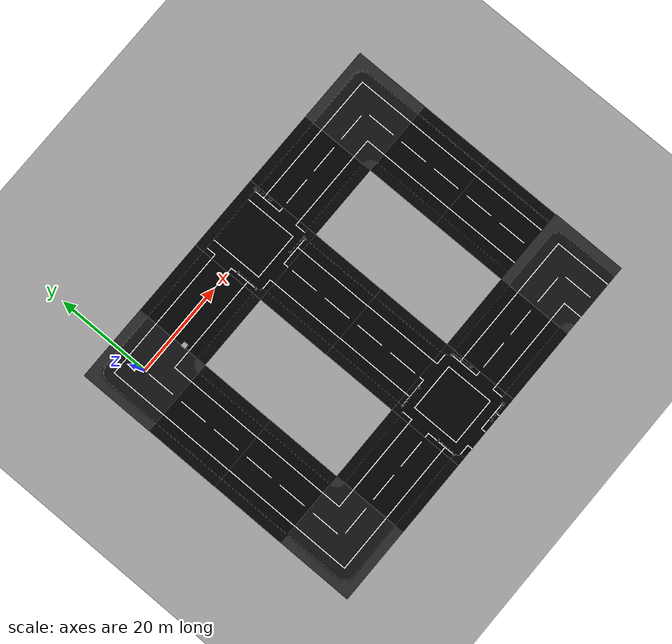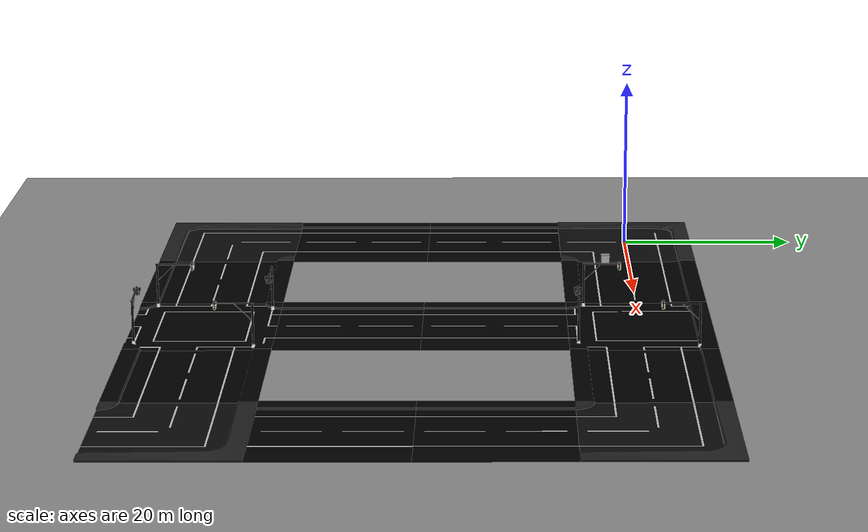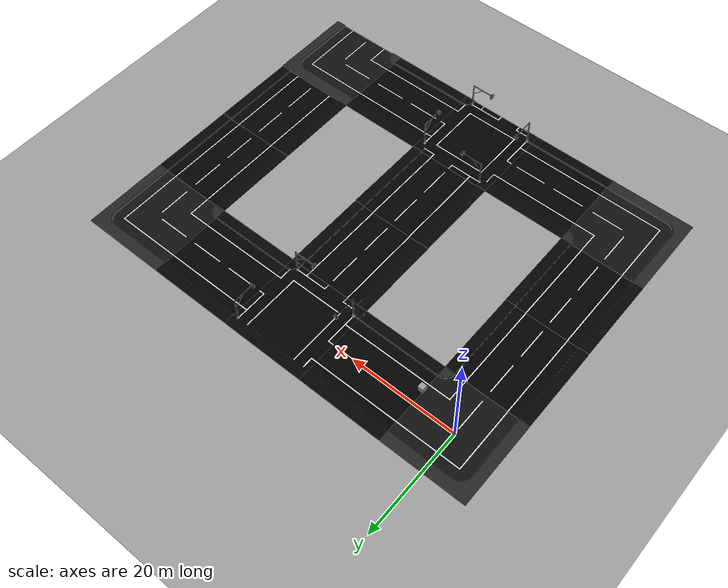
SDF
<sdf version="1.6">
 <world name="default">
  <light name="sun" type="directional">
   <pose>0 0 10 0 -0 0</pose>
   <diffuse>0.8 0.8 0.8 1</diffuse>
   <specular>0.1 0.1 0.1 1</specular>
   <attenuation>
    <range>1000</range>
    <constant>0.9</constant>
    <linear>0.01</linear>
    <quadratic>0.001</quadratic>
   </attenuation>
   <direction>-0.5 0.5 -1</direction>
  </light>
  <gravity>0 0 -9.8</gravity>
  <magnetic_field>6e-06 2.3e-05 -4.2e-05</magnetic_field>
  <atmosphere type="adiabatic"/>
  <physics name="default_physics" default="0" type="ode">
   <max_step_size>0.001</max_step_size>
   <real_time_factor>1</real_time_factor>
   <real_time_update_rate>1000</real_time_update_rate>
  </physics>
  <scene><ambient>0.4 0.4 0.4 1</ambient><background>0.7 0.7 0.7 1</background><shadows>1</shadows></scene>
  <spherical_coordinates>
   <surface_model>EARTH_WGS84</surface_model>
   <latitude_deg>0</latitude_deg>
   <longitude_deg>0</longitude_deg>
   <elevation>0</elevation>
   <heading_deg>0</heading_deg>
  </spherical_coordinates>
  <model name="road_corner_1_0">
   <link name="road_corner_1_link">
    <inertial>
     <mass>1</mass>
     <inertia><ixx>1</ixx><ixy>0</ixy><ixz>0</ixz><iyy>1</iyy><iyz>0</iyz><izz>1</izz></inertia>
    </inertial>
    <visual name="road_corner_1_visual">
     <geometry>
      <mesh>
       <uri>/home/amirmohammad/ros_avisengine_ws/src/autonomous_vehicle/avisengine_environment/meshes/mesh_road_corner.dae</uri>
       <scale>1 1 1</scale>
      </mesh>
     </geometry>
     <material><shader type="vertex"><normal_map>__default__</normal_map></shader></material>
    </visual>
    <collision name="road_corner_1_collision">
     <geometry>
      <mesh>
       <uri>/home/amirmohammad/ros_avisengine_ws/src/autonomous_vehicle/avisengine_environment/meshes/mesh_road_corner.dae</uri>
       <scale>1 1 1</scale>
      </mesh>
     </geometry>
     <surface>
      <friction>
       <ode><mu>1</mu><mu2>1</mu2><fdir1>0 0 0</fdir1><slip1>0</slip1><slip2>0</slip2></ode>
       <torsional>
        <coefficient>1</coefficient>
        <patch_radius>0</patch_radius>
        <surface_radius>0</surface_radius>
        <use_patch_radius>1</use_patch_radius>
        <ode><slip>0</slip></ode>
       </torsional>
      </friction>
      <bounce><restitution_coefficient>0</restitution_coefficient><threshold>1e+06</threshold></bounce>
      <contact>
       <collide_without_contact>0</collide_without_contact>
       <collide_without_contact_bitmask>1</collide_without_contact_bitmask>
       <collide_bitmask>1</collide_bitmask>
       <ode>
        <soft_cfm>0</soft_cfm>
        <soft_erp>0.2</soft_erp>
        <kp>1e+13</kp>
        <kd>1</kd>
        <max_vel>0.01</max_vel>
        <min_depth>0</min_depth>
       </ode>
       <bullet>
        <split_impulse>1</split_impulse>
        <split_impulse_penetration_threshold>-0.01</split_impulse_penetration_threshold>
        <soft_cfm>0</soft_cfm>
        <soft_erp>0.2</soft_erp>
        <kp>1e+13</kp>
        <kd>1</kd>
       </bullet>
      </contact>
     </surface>
    </collision>
   </link>
   <static>1</static>
  </model>
  <model name="unit_box_0_0">
   <pose>8.3825 -2.76854 0.499996 0 -9e-06 -7.9e-05</pose>
   <link name="link">
    <inertial>
     <mass>1</mass>
     <inertia>
      <ixx>0.166667</ixx>
      <ixy>0</ixy>
      <ixz>0</ixz>
      <iyy>0.166667</iyy>
      <iyz>0</iyz>
      <izz>0.166667</izz>
     </inertia>
    </inertial>
    <collision name="collision"><geometry><box><size>1 1 1</size></box></geometry></collision>
    <visual name="visual">
     <geometry><box><size>1 1 1</size></box></geometry>
     <material>
      <script><name>Gazebo/Grey</name><uri>file://media/materials/scripts/gazebo.material</uri></script>
     </material>
    </visual>
   </link>
  </model>
  <model name="road_straight_1">
   <link name="road_corner_1_link">
    <inertial>
     <inertia><ixx>1</ixx><ixy>0</ixy><ixz>0</ixz><iyy>1</iyy><iyz>0</iyz><izz>1</izz></inertia>
     <mass>1</mass>
    </inertial>
    <visual name="road_corner_1_visual">
     <geometry>
      <mesh>
       <uri>/home/amirmohammad/ros_avisengine_ws/src/autonomous_vehicle/avisengine_environment/meshes/mesh_road_straight.dae</uri>
       <scale>1 1 1</scale>
      </mesh>
     </geometry>
     <material><shader type="vertex"><normal_map>__default__</normal_map></shader></material>
    </visual>
    <collision name="road_corner_1_collision">
     <geometry>
      <mesh>
       <uri>/home/amirmohammad/ros_avisengine_ws/src/autonomous_vehicle/avisengine_environment/meshes/mesh_road_straight.dae</uri>
       <scale>1 1 1</scale>
      </mesh>
     </geometry>
     <surface>
      <friction>
       <ode><mu>1</mu><mu2>1</mu2><fdir1>0 0 0</fdir1><slip1>0</slip1><slip2>0</slip2></ode>
       <torsional>
        <coefficient>1</coefficient>
        <patch_radius>0</patch_radius>
        <surface_radius>0</surface_radius>
        <use_patch_radius>1</use_patch_radius>
        <ode><slip>0</slip></ode>
       </torsional>
      </friction>
      <bounce><restitution_coefficient>0</restitution_coefficient><threshold>1e+06</threshold></bounce>
      <contact>
       <collide_without_contact>0</collide_without_contact>
       <collide_without_contact_bitmask>1</collide_without_contact_bitmask>
       <collide_bitmask>1</collide_bitmask>
       <ode>
        <soft_cfm>0</soft_cfm>
        <soft_erp>0.2</soft_erp>
        <kp>1e+13</kp>
        <kd>1</kd>
        <max_vel>0.01</max_vel>
        <min_depth>0</min_depth>
       </ode>
       <bullet>
        <split_impulse>1</split_impulse>
        <split_impulse_penetration_threshold>-0.01</split_impulse_penetration_threshold>
        <soft_cfm>0</soft_cfm>
        <soft_erp>0.2</soft_erp>
        <kp>1e+13</kp>
        <kd>1</kd>
       </bullet>
      </contact>
     </surface>
    </collision>
   </link>
   <static>1</static>
   <pose>16 0 0 0 -0 0</pose>
  </model>
  <model name="road_TIntersection_1_0">
   <link name="road_corner_1_link">
    <inertial>
     <inertia><ixx>1</ixx><ixy>0</ixy><ixz>0</ixz><iyy>1</iyy><iyz>0</iyz><izz>1</izz></inertia>
     <mass>1</mass>
    </inertial>
    <visual name="road_corner_1_visual">
     <geometry>
      <mesh>
       <uri>/home/amirmohammad/ros_avisengine_ws/src/autonomous_vehicle/avisengine_environment/meshes/mesh_road_Tintersection.dae</uri>
       <scale>1 1 1</scale>
      </mesh>
     </geometry>
     <material><shader type="vertex"><normal_map>__default__</normal_map></shader></material>
    </visual>
    <collision name="road_corner_1_collision">
     <geometry>
      <mesh>
       <uri>/home/amirmohammad/ros_avisengine_ws/src/autonomous_vehicle/avisengine_environment/meshes/mesh_road_Tintersection.dae</uri>
       <scale>1 1 1</scale>
      </mesh>
     </geometry>
     <surface>
      <friction>
       <ode><mu>1</mu><mu2>1</mu2><fdir1>0 0 0</fdir1><slip1>0</slip1><slip2>0</slip2></ode>
       <torsional>
        <coefficient>1</coefficient>
        <patch_radius>0</patch_radius>
        <surface_radius>0</surface_radius>
        <use_patch_radius>1</use_patch_radius>
        <ode><slip>0</slip></ode>
       </torsional>
      </friction>
      <bounce><restitution_coefficient>0</restitution_coefficient><threshold>1e+06</threshold></bounce>
      <contact>
       <collide_without_contact>0</collide_without_contact>
       <collide_without_contact_bitmask>1</collide_without_contact_bitmask>
       <collide_bitmask>1</collide_bitmask>
       <ode>
        <soft_cfm>0</soft_cfm>
        <soft_erp>0.2</soft_erp>
        <kp>1e+13</kp>
        <kd>1</kd>
        <max_vel>0.01</max_vel>
        <min_depth>0</min_depth>
       </ode>
       <bullet>
        <split_impulse>1</split_impulse>
        <split_impulse_penetration_threshold>-0.01</split_impulse_penetration_threshold>
        <soft_cfm>0</soft_cfm>
        <soft_erp>0.2</soft_erp>
        <kp>1e+13</kp>
        <kd>1</kd>
       </bullet>
      </contact>
     </surface>
    </collision>
   </link>
   <static>1</static>
   <pose>32 0 0 0 -0 0</pose>
  </model>
  <model name="road_straight_1_0">
   <link name="road_corner_1_link">
    <inertial>
     <inertia><ixx>1</ixx><ixy>0</ixy><ixz>0</ixz><iyy>1</iyy><iyz>0</iyz><izz>1</izz></inertia>
     <mass>1</mass>
    </inertial>
    <visual name="road_corner_1_visual">
     <geometry>
      <mesh>
       <uri>/home/amirmohammad/ros_avisengine_ws/src/autonomous_vehicle/avisengine_environment/meshes/mesh_road_straight.dae</uri>
       <scale>1 1 1</scale>
      </mesh>
     </geometry>
     <material><shader type="vertex"><normal_map>__default__</normal_map></shader></material>
    </visual>
    <collision name="road_corner_1_collision">
     <geometry>
      <mesh>
       <uri>/home/amirmohammad/ros_avisengine_ws/src/autonomous_vehicle/avisengine_environment/meshes/mesh_road_straight.dae</uri>
       <scale>1 1 1</scale>
      </mesh>
     </geometry>
     <surface>
      <friction>
       <ode><mu>1</mu><mu2>1</mu2><fdir1>0 0 0</fdir1><slip1>0</slip1><slip2>0</slip2></ode>
       <torsional>
        <coefficient>1</coefficient>
        <patch_radius>0</patch_radius>
        <surface_radius>0</surface_radius>
        <use_patch_radius>1</use_patch_radius>
        <ode><slip>0</slip></ode>
       </torsional>
      </friction>
      <bounce><restitution_coefficient>0</restitution_coefficient><threshold>1e+06</threshold></bounce>
      <contact>
       <collide_without_contact>0</collide_without_contact>
       <collide_without_contact_bitmask>1</collide_without_contact_bitmask>
       <collide_bitmask>1</collide_bitmask>
       <ode>
        <soft_cfm>0</soft_cfm>
        <soft_erp>0.2</soft_erp>
        <kp>1e+13</kp>
        <kd>1</kd>
        <max_vel>0.01</max_vel>
        <min_depth>0</min_depth>
       </ode>
       <bullet>
        <split_impulse>1</split_impulse>
        <split_impulse_penetration_threshold>-0.01</split_impulse_penetration_threshold>
        <soft_cfm>0</soft_cfm>
        <soft_erp>0.2</soft_erp>
        <kp>1e+13</kp>
        <kd>1</kd>
       </bullet>
      </contact>
     </surface>
    </collision>
   </link>
   <static>1</static>
   <pose>48 0 0 0 -0 0</pose>
  </model>
  <model name="road_corner_1_0_0">
   <link name="road_corner_1_0::road_corner_1_link">
    <inertial>
     <inertia><ixx>1</ixx><ixy>0</ixy><ixz>0</ixz><iyy>1</iyy><iyz>0</iyz><izz>1</izz></inertia>
     <mass>1</mass>
    </inertial>
    <visual name="road_corner_1_visual">
     <geometry>
      <mesh>
       <uri>/home/amirmohammad/ros_avisengine_ws/src/autonomous_vehicle/avisengine_environment/meshes/mesh_road_corner.dae</uri>
       <scale>1 1 1</scale>
      </mesh>
     </geometry>
     <material><shader type="vertex"><normal_map>__default__</normal_map></shader></material>
    </visual>
    <collision name="road_corner_1_collision">
     <geometry>
      <mesh>
       <uri>/home/amirmohammad/ros_avisengine_ws/src/autonomous_vehicle/avisengine_environment/meshes/mesh_road_corner.dae</uri>
       <scale>1 1 1</scale>
      </mesh>
     </geometry>
     <surface>
      <friction>
       <ode><mu>1</mu><mu2>1</mu2><fdir1>0 0 0</fdir1><slip1>0</slip1><slip2>0</slip2></ode>
       <torsional>
        <coefficient>1</coefficient>
        <patch_radius>0</patch_radius>
        <surface_radius>0</surface_radius>
        <use_patch_radius>1</use_patch_radius>
        <ode><slip>0</slip></ode>
       </torsional>
      </friction>
      <bounce><restitution_coefficient>0</restitution_coefficient><threshold>1e+06</threshold></bounce>
      <contact>
       <collide_without_contact>0</collide_without_contact>
       <collide_without_contact_bitmask>1</collide_without_contact_bitmask>
       <collide_bitmask>1</collide_bitmask>
       <ode>
        <soft_cfm>0</soft_cfm>
        <soft_erp>0.2</soft_erp>
        <kp>1e+13</kp>
        <kd>1</kd>
        <max_vel>0.01</max_vel>
        <min_depth>0</min_depth>
       </ode>
       <bullet>
        <split_impulse>1</split_impulse>
        <split_impulse_penetration_threshold>-0.01</split_impulse_penetration_threshold>
        <soft_cfm>0</soft_cfm>
        <soft_erp>0.2</soft_erp>
        <kp>1e+13</kp>
        <kd>1</kd>
       </bullet>
      </contact>
     </surface>
    </collision>
   </link>
   <static>1</static>
   <pose>64 -0.024108 0 0 0 -1.57319</pose>
  </model>
  <model name="road_straight_1_1">
   <link name="road_corner_1_link">
    <inertial>
     <inertia><ixx>1</ixx><ixy>0</ixy><ixz>0</ixz><iyy>1</iyy><iyz>0</iyz><izz>1</izz></inertia>
     <mass>1</mass>
    </inertial>
    <visual name="road_corner_1_visual">
     <geometry>
      <mesh>
       <uri>/home/amirmohammad/ros_avisengine_ws/src/autonomous_vehicle/avisengine_environment/meshes/mesh_road_straight.dae</uri>
       <scale>1 1 1</scale>
      </mesh>
     </geometry>
     <material><shader type="vertex"><normal_map>__default__</normal_map></shader></material>
    </visual>
    <collision name="road_corner_1_collision">
     <geometry>
      <mesh>
       <uri>/home/amirmohammad/ros_avisengine_ws/src/autonomous_vehicle/avisengine_environment/meshes/mesh_road_straight.dae</uri>
       <scale>1 1 1</scale>
      </mesh>
     </geometry>
     <surface>
      <friction>
       <ode><mu>1</mu><mu2>1</mu2><fdir1>0 0 0</fdir1><slip1>0</slip1><slip2>0</slip2></ode>
       <torsional>
        <coefficient>1</coefficient>
        <patch_radius>0</patch_radius>
        <surface_radius>0</surface_radius>
        <use_patch_radius>1</use_patch_radius>
        <ode><slip>0</slip></ode>
       </torsional>
      </friction>
      <bounce><restitution_coefficient>0</restitution_coefficient><threshold>1e+06</threshold></bounce>
      <contact>
       <collide_without_contact>0</collide_without_contact>
       <collide_without_contact_bitmask>1</collide_without_contact_bitmask>
       <collide_bitmask>1</collide_bitmask>
       <ode>
        <soft_cfm>0</soft_cfm>
        <soft_erp>0.2</soft_erp>
        <kp>1e+13</kp>
        <kd>1</kd>
        <max_vel>0.01</max_vel>
        <min_depth>0</min_depth>
       </ode>
       <bullet>
        <split_impulse>1</split_impulse>
        <split_impulse_penetration_threshold>-0.01</split_impulse_penetration_threshold>
        <soft_cfm>0</soft_cfm>
        <soft_erp>0.2</soft_erp>
        <kp>1e+13</kp>
        <kd>1</kd>
       </bullet>
      </contact>
     </surface>
    </collision>
   </link>
   <static>1</static>
   <pose>31.9887 -15.9969 0 0 0 -1.57319</pose>
  </model>
  <model name="road_straight_1_1_clone">
   <link name="road_corner_1_link">
    <inertial>
     <inertia><ixx>1</ixx><ixy>0</ixy><ixz>0</ixz><iyy>1</iyy><iyz>0</iyz><izz>1</izz></inertia>
     <mass>1</mass>
    </inertial>
    <visual name="road_corner_1_visual">
     <geometry>
      <mesh>
       <uri>/home/amirmohammad/ros_avisengine_ws/src/autonomous_vehicle/avisengine_environment/meshes/mesh_road_straight.dae</uri>
       <scale>1 1 1</scale>
      </mesh>
     </geometry>
     <material><shader type="vertex"><normal_map>__default__</normal_map></shader></material>
    </visual>
    <collision name="road_corner_1_collision">
     <geometry>
      <mesh>
       <uri>/home/amirmohammad/ros_avisengine_ws/src/autonomous_vehicle/avisengine_environment/meshes/mesh_road_straight.dae</uri>
       <scale>1 1 1</scale>
      </mesh>
     </geometry>
     <surface>
      <friction>
       <ode><mu>1</mu><mu2>1</mu2><fdir1>0 0 0</fdir1><slip1>0</slip1><slip2>0</slip2></ode>
       <torsional>
        <coefficient>1</coefficient>
        <patch_radius>0</patch_radius>
        <surface_radius>0</surface_radius>
        <use_patch_radius>1</use_patch_radius>
        <ode><slip>0</slip></ode>
       </torsional>
      </friction>
      <bounce><restitution_coefficient>0</restitution_coefficient><threshold>1e+06</threshold></bounce>
      <contact>
       <collide_without_contact>0</collide_without_contact>
       <collide_without_contact_bitmask>1</collide_without_contact_bitmask>
       <collide_bitmask>1</collide_bitmask>
       <ode>
        <soft_cfm>0</soft_cfm>
        <soft_erp>0.2</soft_erp>
        <kp>1e+13</kp>
        <kd>1</kd>
        <max_vel>0.01</max_vel>
        <min_depth>0</min_depth>
       </ode>
       <bullet>
        <split_impulse>1</split_impulse>
        <split_impulse_penetration_threshold>-0.01</split_impulse_penetration_threshold>
        <soft_cfm>0</soft_cfm>
        <soft_erp>0.2</soft_erp>
        <kp>1e+13</kp>
        <kd>1</kd>
       </bullet>
      </contact>
     </surface>
    </collision>
   </link>
   <static>1</static>
   <pose>32 -32 0 0 0 -1.57319</pose>
  </model>
  <model name="road_straight_1_1_clone_0">
   <link name="road_corner_1_link">
    <inertial>
     <inertia><ixx>1</ixx><ixy>0</ixy><ixz>0</ixz><iyy>1</iyy><iyz>0</iyz><izz>1</izz></inertia>
     <mass>1</mass>
    </inertial>
    <visual name="road_corner_1_visual">
     <geometry>
      <mesh>
       <uri>/home/amirmohammad/ros_avisengine_ws/src/autonomous_vehicle/avisengine_environment/meshes/mesh_road_straight.dae</uri>
       <scale>1 1 1</scale>
      </mesh>
     </geometry>
     <material><shader type="vertex"><normal_map>__default__</normal_map></shader></material>
    </visual>
    <collision name="road_corner_1_collision">
     <geometry>
      <mesh>
       <uri>/home/amirmohammad/ros_avisengine_ws/src/autonomous_vehicle/avisengine_environment/meshes/mesh_road_straight.dae</uri>
       <scale>1 1 1</scale>
      </mesh>
     </geometry>
     <surface>
      <friction>
       <ode><mu>1</mu><mu2>1</mu2><fdir1>0 0 0</fdir1><slip1>0</slip1><slip2>0</slip2></ode>
       <torsional>
        <coefficient>1</coefficient>
        <patch_radius>0</patch_radius>
        <surface_radius>0</surface_radius>
        <use_patch_radius>1</use_patch_radius>
        <ode><slip>0</slip></ode>
       </torsional>
      </friction>
      <bounce><restitution_coefficient>0</restitution_coefficient><threshold>1e+06</threshold></bounce>
      <contact>
       <collide_without_contact>0</collide_without_contact>
       <collide_without_contact_bitmask>1</collide_without_contact_bitmask>
       <collide_bitmask>1</collide_bitmask>
       <ode>
        <soft_cfm>0</soft_cfm>
        <soft_erp>0.2</soft_erp>
        <kp>1e+13</kp>
        <kd>1</kd>
        <max_vel>0.01</max_vel>
        <min_depth>0</min_depth>
       </ode>
       <bullet>
        <split_impulse>1</split_impulse>
        <split_impulse_penetration_threshold>-0.01</split_impulse_penetration_threshold>
        <soft_cfm>0</soft_cfm>
        <soft_erp>0.2</soft_erp>
        <kp>1e+13</kp>
        <kd>1</kd>
       </bullet>
      </contact>
     </surface>
    </collision>
   </link>
   <static>1</static>
   <pose>63.9638 -15.9999 0 0 0 -1.57319</pose>
  </model>
  <model name="road_Intersection_1">
   <link name="road_corner_1_link">
    <inertial>
     <inertia><ixx>1</ixx><ixy>0</ixy><ixz>0</ixz><iyy>1</iyy><iyz>0</iyz><izz>1</izz></inertia>
     <mass>1</mass>
    </inertial>
    <visual name="road_corner_1_visual">
     <geometry>
      <mesh>
       <uri>/home/amirmohammad/ros_avisengine_ws/src/autonomous_vehicle/avisengine_environment/meshes/mesh_road_intersection.dae</uri>
       <scale>1 1 1</scale>
      </mesh>
     </geometry>
     <material><shader type="vertex"><normal_map>__default__</normal_map></shader></material>
    </visual>
    <collision name="road_corner_1_collision">
     <geometry>
      <mesh>
       <uri>/home/amirmohammad/ros_avisengine_ws/src/autonomous_vehicle/avisengine_environment/meshes/mesh_road_intersection.dae</uri>
       <scale>1 1 1</scale>
      </mesh>
     </geometry>
     <surface>
      <friction>
       <ode><mu>1</mu><mu2>1</mu2><fdir1>0 0 0</fdir1><slip1>0</slip1><slip2>0</slip2></ode>
       <torsional>
        <coefficient>1</coefficient>
        <patch_radius>0</patch_radius>
        <surface_radius>0</surface_radius>
        <use_patch_radius>1</use_patch_radius>
        <ode><slip>0</slip></ode>
       </torsional>
      </friction>
      <bounce><restitution_coefficient>0</restitution_coefficient><threshold>1e+06</threshold></bounce>
      <contact>
       <collide_without_contact>0</collide_without_contact>
       <collide_without_contact_bitmask>1</collide_without_contact_bitmask>
       <collide_bitmask>1</collide_bitmask>
       <ode>
        <soft_cfm>0</soft_cfm>
        <soft_erp>0.2</soft_erp>
        <kp>1e+13</kp>
        <kd>1</kd>
        <max_vel>0.01</max_vel>
        <min_depth>0</min_depth>
       </ode>
       <bullet>
        <split_impulse>1</split_impulse>
        <split_impulse_penetration_threshold>-0.01</split_impulse_penetration_threshold>
        <soft_cfm>0</soft_cfm>
        <soft_erp>0.2</soft_erp>
        <kp>1e+13</kp>
        <kd>1</kd>
       </bullet>
      </contact>
     </surface>
    </collision>
   </link>
   <static>1</static>
   <pose>32 -48 0 0 -0 0</pose>
  </model>
  <model name="road_straight_1_0_clone">
   <link name="road_corner_1_link">
    <inertial>
     <inertia><ixx>1</ixx><ixy>0</ixy><ixz>0</ixz><iyy>1</iyy><iyz>0</iyz><izz>1</izz></inertia>
     <mass>1</mass>
    </inertial>
    <visual name="road_corner_1_visual">
     <geometry>
      <mesh>
       <uri>/home/amirmohammad/ros_avisengine_ws/src/autonomous_vehicle/avisengine_environment/meshes/mesh_road_straight.dae</uri>
       <scale>1 1 1</scale>
      </mesh>
     </geometry>
     <material><shader type="vertex"><normal_map>__default__</normal_map></shader></material>
    </visual>
    <collision name="road_corner_1_collision">
     <geometry>
      <mesh>
       <uri>/home/amirmohammad/ros_avisengine_ws/src/autonomous_vehicle/avisengine_environment/meshes/mesh_road_straight.dae</uri>
       <scale>1 1 1</scale>
      </mesh>
     </geometry>
     <surface>
      <friction>
       <ode><mu>1</mu><mu2>1</mu2><fdir1>0 0 0</fdir1><slip1>0</slip1><slip2>0</slip2></ode>
       <torsional>
        <coefficient>1</coefficient>
        <patch_radius>0</patch_radius>
        <surface_radius>0</surface_radius>
        <use_patch_radius>1</use_patch_radius>
        <ode><slip>0</slip></ode>
       </torsional>
      </friction>
      <bounce><restitution_coefficient>0</restitution_coefficient><threshold>1e+06</threshold></bounce>
      <contact>
       <collide_without_contact>0</collide_without_contact>
       <collide_without_contact_bitmask>1</collide_without_contact_bitmask>
       <collide_bitmask>1</collide_bitmask>
       <ode>
        <soft_cfm>0</soft_cfm>
        <soft_erp>0.2</soft_erp>
        <kp>1e+13</kp>
        <kd>1</kd>
        <max_vel>0.01</max_vel>
        <min_depth>0</min_depth>
       </ode>
       <bullet>
        <split_impulse>1</split_impulse>
        <split_impulse_penetration_threshold>-0.01</split_impulse_penetration_threshold>
        <soft_cfm>0</soft_cfm>
        <soft_erp>0.2</soft_erp>
        <kp>1e+13</kp>
        <kd>1</kd>
       </bullet>
      </contact>
     </surface>
    </collision>
   </link>
   <static>1</static>
   <pose>16 -48 0 0 -0 0</pose>
  </model>
  <model name="road_corner_1_0_0_clone">
   <link name="road_corner_1_0::road_corner_1_link">
    <inertial>
     <inertia><ixx>1</ixx><ixy>0</ixy><ixz>0</ixz><iyy>1</iyy><iyz>0</iyz><izz>1</izz></inertia>
     <mass>1</mass>
    </inertial>
    <visual name="road_corner_1_visual">
     <geometry>
      <mesh>
       <uri>/home/amirmohammad/ros_avisengine_ws/src/autonomous_vehicle/avisengine_environment/meshes/mesh_road_corner.dae</uri>
       <scale>1 1 1</scale>
      </mesh>
     </geometry>
     <material><shader type="vertex"><normal_map>__default__</normal_map></shader></material>
    </visual>
    <collision name="road_corner_1_collision">
     <geometry>
      <mesh>
       <uri>/home/amirmohammad/ros_avisengine_ws/src/autonomous_vehicle/avisengine_environment/meshes/mesh_road_corner.dae</uri>
       <scale>1 1 1</scale>
      </mesh>
     </geometry>
     <surface>
      <friction>
       <ode><mu>1</mu><mu2>1</mu2><fdir1>0 0 0</fdir1><slip1>0</slip1><slip2>0</slip2></ode>
       <torsional>
        <coefficient>1</coefficient>
        <patch_radius>0</patch_radius>
        <surface_radius>0</surface_radius>
        <use_patch_radius>1</use_patch_radius>
        <ode><slip>0</slip></ode>
       </torsional>
      </friction>
      <bounce><restitution_coefficient>0</restitution_coefficient><threshold>1e+06</threshold></bounce>
      <contact>
       <collide_without_contact>0</collide_without_contact>
       <collide_without_contact_bitmask>1</collide_without_contact_bitmask>
       <collide_bitmask>1</collide_bitmask>
       <ode>
        <soft_cfm>0</soft_cfm>
        <soft_erp>0.2</soft_erp>
        <kp>1e+13</kp>
        <kd>1</kd>
        <max_vel>0.01</max_vel>
        <min_depth>0</min_depth>
       </ode>
       <bullet>
        <split_impulse>1</split_impulse>
        <split_impulse_penetration_threshold>-0.01</split_impulse_penetration_threshold>
        <soft_cfm>0</soft_cfm>
        <soft_erp>0.2</soft_erp>
        <kp>1e+13</kp>
        <kd>1</kd>
       </bullet>
      </contact>
     </surface>
    </collision>
   </link>
   <static>1</static>
   <pose>0 -48 0 0 -0 1.57</pose>
  </model>
  <model name="road_straight_1_1_clone_clone">
   <link name="road_corner_1_link">
    <inertial>
     <inertia><ixx>1</ixx><ixy>0</ixy><ixz>0</ixz><iyy>1</iyy><iyz>0</iyz><izz>1</izz></inertia>
     <mass>1</mass>
    </inertial>
    <visual name="road_corner_1_visual">
     <geometry>
      <mesh>
       <uri>/home/amirmohammad/ros_avisengine_ws/src/autonomous_vehicle/avisengine_environment/meshes/mesh_road_straight.dae</uri>
       <scale>1 1 1</scale>
      </mesh>
     </geometry>
     <material><shader type="vertex"><normal_map>__default__</normal_map></shader></material>
    </visual>
    <collision name="road_corner_1_collision">
     <geometry>
      <mesh>
       <uri>/home/amirmohammad/ros_avisengine_ws/src/autonomous_vehicle/avisengine_environment/meshes/mesh_road_straight.dae</uri>
       <scale>1 1 1</scale>
      </mesh>
     </geometry>
     <surface>
      <friction>
       <ode><mu>1</mu><mu2>1</mu2><fdir1>0 0 0</fdir1><slip1>0</slip1><slip2>0</slip2></ode>
       <torsional>
        <coefficient>1</coefficient>
        <patch_radius>0</patch_radius>
        <surface_radius>0</surface_radius>
        <use_patch_radius>1</use_patch_radius>
        <ode><slip>0</slip></ode>
       </torsional>
      </friction>
      <bounce><restitution_coefficient>0</restitution_coefficient><threshold>1e+06</threshold></bounce>
      <contact>
       <collide_without_contact>0</collide_without_contact>
       <collide_without_contact_bitmask>1</collide_without_contact_bitmask>
       <collide_bitmask>1</collide_bitmask>
       <ode>
        <soft_cfm>0</soft_cfm>
        <soft_erp>0.2</soft_erp>
        <kp>1e+13</kp>
        <kd>1</kd>
        <max_vel>0.01</max_vel>
        <min_depth>0</min_depth>
       </ode>
       <bullet>
        <split_impulse>1</split_impulse>
        <split_impulse_penetration_threshold>-0.01</split_impulse_penetration_threshold>
        <soft_cfm>0</soft_cfm>
        <soft_erp>0.2</soft_erp>
        <kp>1e+13</kp>
        <kd>1</kd>
       </bullet>
      </contact>
     </surface>
    </collision>
   </link>
   <static>1</static>
   <pose>0 -32 0 0 0 -1.57319</pose>
  </model>
  <model name="road_straight_1_1_clone_clone_0">
   <link name="road_corner_1_link">
    <inertial>
     <inertia><ixx>1</ixx><ixy>0</ixy><ixz>0</ixz><iyy>1</iyy><iyz>0</iyz><izz>1</izz></inertia>
     <mass>1</mass>
    </inertial>
    <visual name="road_corner_1_visual">
     <geometry>
      <mesh>
       <uri>/home/amirmohammad/ros_avisengine_ws/src/autonomous_vehicle/avisengine_environment/meshes/mesh_road_straight.dae</uri>
       <scale>1 1 1</scale>
      </mesh>
     </geometry>
     <material><shader type="vertex"><normal_map>__default__</normal_map></shader></material>
    </visual>
    <collision name="road_corner_1_collision">
     <geometry>
      <mesh>
       <uri>/home/amirmohammad/ros_avisengine_ws/src/autonomous_vehicle/avisengine_environment/meshes/mesh_road_straight.dae</uri>
       <scale>1 1 1</scale>
      </mesh>
     </geometry>
     <surface>
      <friction>
       <ode><mu>1</mu><mu2>1</mu2><fdir1>0 0 0</fdir1><slip1>0</slip1><slip2>0</slip2></ode>
       <torsional>
        <coefficient>1</coefficient>
        <patch_radius>0</patch_radius>
        <surface_radius>0</surface_radius>
        <use_patch_radius>1</use_patch_radius>
        <ode><slip>0</slip></ode>
       </torsional>
      </friction>
      <bounce><restitution_coefficient>0</restitution_coefficient><threshold>1e+06</threshold></bounce>
      <contact>
       <collide_without_contact>0</collide_without_contact>
       <collide_without_contact_bitmask>1</collide_without_contact_bitmask>
       <collide_bitmask>1</collide_bitmask>
       <ode>
        <soft_cfm>0</soft_cfm>
        <soft_erp>0.2</soft_erp>
        <kp>1e+13</kp>
        <kd>1</kd>
        <max_vel>0.01</max_vel>
        <min_depth>0</min_depth>
       </ode>
       <bullet>
        <split_impulse>1</split_impulse>
        <split_impulse_penetration_threshold>-0.01</split_impulse_penetration_threshold>
        <soft_cfm>0</soft_cfm>
        <soft_erp>0.2</soft_erp>
        <kp>1e+13</kp>
        <kd>1</kd>
       </bullet>
      </contact>
     </surface>
    </collision>
   </link>
   <static>1</static>
   <pose>0 -16 0 0 0 -1.57319</pose>
  </model>
  <model name="road_straight_1_1_clone_0_clone">
   <link name="road_corner_1_link">
    <inertial>
     <inertia><ixx>1</ixx><ixy>0</ixy><ixz>0</ixz><iyy>1</iyy><iyz>0</iyz><izz>1</izz></inertia>
     <mass>1</mass>
    </inertial>
    <visual name="road_corner_1_visual">
     <geometry>
      <mesh>
       <uri>/home/amirmohammad/ros_avisengine_ws/src/autonomous_vehicle/avisengine_environment/meshes/mesh_road_straight.dae</uri>
       <scale>1 1 1</scale>
      </mesh>
     </geometry>
     <material><shader type="vertex"><normal_map>__default__</normal_map></shader></material>
    </visual>
    <collision name="road_corner_1_collision">
     <geometry>
      <mesh>
       <uri>/home/amirmohammad/ros_avisengine_ws/src/autonomous_vehicle/avisengine_environment/meshes/mesh_road_straight.dae</uri>
       <scale>1 1 1</scale>
      </mesh>
     </geometry>
     <surface>
      <friction>
       <ode><mu>1</mu><mu2>1</mu2><fdir1>0 0 0</fdir1><slip1>0</slip1><slip2>0</slip2></ode>
       <torsional>
        <coefficient>1</coefficient>
        <patch_radius>0</patch_radius>
        <surface_radius>0</surface_radius>
        <use_patch_radius>1</use_patch_radius>
        <ode><slip>0</slip></ode>
       </torsional>
      </friction>
      <bounce><restitution_coefficient>0</restitution_coefficient><threshold>1e+06</threshold></bounce>
      <contact>
       <collide_without_contact>0</collide_without_contact>
       <collide_without_contact_bitmask>1</collide_without_contact_bitmask>
       <collide_bitmask>1</collide_bitmask>
       <ode>
        <soft_cfm>0</soft_cfm>
        <soft_erp>0.2</soft_erp>
        <kp>1e+13</kp>
        <kd>1</kd>
        <max_vel>0.01</max_vel>
        <min_depth>0</min_depth>
       </ode>
       <bullet>
        <split_impulse>1</split_impulse>
        <split_impulse_penetration_threshold>-0.01</split_impulse_penetration_threshold>
        <soft_cfm>0</soft_cfm>
        <soft_erp>0.2</soft_erp>
        <kp>1e+13</kp>
        <kd>1</kd>
       </bullet>
      </contact>
     </surface>
    </collision>
   </link>
   <static>1</static>
   <pose>63.9438 -32.0013 0 0 0 -1.57319</pose>
  </model>
  <model name="road_corner_1_0_0_clone_0">
   <link name="road_corner_1_0::road_corner_1_link">
    <inertial>
     <inertia><ixx>1</ixx><ixy>0</ixy><ixz>0</ixz><iyy>1</iyy><iyz>0</iyz><izz>1</izz></inertia>
     <mass>1</mass>
    </inertial>
    <visual name="road_corner_1_visual">
     <geometry>
      <mesh>
       <uri>/home/amirmohammad/ros_avisengine_ws/src/autonomous_vehicle/avisengine_environment/meshes/mesh_road_corner.dae</uri>
       <scale>1 1 1</scale>
      </mesh>
     </geometry>
     <material><shader type="vertex"><normal_map>__default__</normal_map></shader></material>
    </visual>
    <collision name="road_corner_1_collision">
     <geometry>
      <mesh>
       <uri>/home/amirmohammad/ros_avisengine_ws/src/autonomous_vehicle/avisengine_environment/meshes/mesh_road_corner.dae</uri>
       <scale>1 1 1</scale>
      </mesh>
     </geometry>
     <surface>
      <friction>
       <ode><mu>1</mu><mu2>1</mu2><fdir1>0 0 0</fdir1><slip1>0</slip1><slip2>0</slip2></ode>
       <torsional>
        <coefficient>1</coefficient>
        <patch_radius>0</patch_radius>
        <surface_radius>0</surface_radius>
        <use_patch_radius>1</use_patch_radius>
        <ode><slip>0</slip></ode>
       </torsional>
      </friction>
      <bounce><restitution_coefficient>0</restitution_coefficient><threshold>1e+06</threshold></bounce>
      <contact>
       <collide_without_contact>0</collide_without_contact>
       <collide_without_contact_bitmask>1</collide_without_contact_bitmask>
       <collide_bitmask>1</collide_bitmask>
       <ode>
        <soft_cfm>0</soft_cfm>
        <soft_erp>0.2</soft_erp>
        <kp>1e+13</kp>
        <kd>1</kd>
        <max_vel>0.01</max_vel>
        <min_depth>0</min_depth>
       </ode>
       <bullet>
        <split_impulse>1</split_impulse>
        <split_impulse_penetration_threshold>-0.01</split_impulse_penetration_threshold>
        <soft_cfm>0</soft_cfm>
        <soft_erp>0.2</soft_erp>
        <kp>1e+13</kp>
        <kd>1</kd>
       </bullet>
      </contact>
     </surface>
    </collision>
   </link>
   <static>1</static>
   <pose>64 -48 0 0 0 -1.57319</pose>
  </model>
  <model name="road_straight_1_0_clone_0">
   <link name="road_corner_1_link">
    <inertial>
     <inertia><ixx>1</ixx><ixy>0</ixy><ixz>0</ixz><iyy>1</iyy><iyz>0</iyz><izz>1</izz></inertia>
     <mass>1</mass>
    </inertial>
    <visual name="road_corner_1_visual">
     <geometry>
      <mesh>
       <uri>/home/amirmohammad/ros_avisengine_ws/src/autonomous_vehicle/avisengine_environment/meshes/mesh_road_straight.dae</uri>
       <scale>1 1 1</scale>
      </mesh>
     </geometry>
     <material><shader type="vertex"><normal_map>__default__</normal_map></shader></material>
    </visual>
    <collision name="road_corner_1_collision">
     <geometry>
      <mesh>
       <uri>/home/amirmohammad/ros_avisengine_ws/src/autonomous_vehicle/avisengine_environment/meshes/mesh_road_straight.dae</uri>
       <scale>1 1 1</scale>
      </mesh>
     </geometry>
     <surface>
      <friction>
       <ode><mu>1</mu><mu2>1</mu2><fdir1>0 0 0</fdir1><slip1>0</slip1><slip2>0</slip2></ode>
       <torsional>
        <coefficient>1</coefficient>
        <patch_radius>0</patch_radius>
        <surface_radius>0</surface_radius>
        <use_patch_radius>1</use_patch_radius>
        <ode><slip>0</slip></ode>
       </torsional>
      </friction>
      <bounce><restitution_coefficient>0</restitution_coefficient><threshold>1e+06</threshold></bounce>
      <contact>
       <collide_without_contact>0</collide_without_contact>
       <collide_without_contact_bitmask>1</collide_without_contact_bitmask>
       <collide_bitmask>1</collide_bitmask>
       <ode>
        <soft_cfm>0</soft_cfm>
        <soft_erp>0.2</soft_erp>
        <kp>1e+13</kp>
        <kd>1</kd>
        <max_vel>0.01</max_vel>
        <min_depth>0</min_depth>
       </ode>
       <bullet>
        <split_impulse>1</split_impulse>
        <split_impulse_penetration_threshold>-0.01</split_impulse_penetration_threshold>
        <soft_cfm>0</soft_cfm>
        <soft_erp>0.2</soft_erp>
        <kp>1e+13</kp>
        <kd>1</kd>
       </bullet>
      </contact>
     </surface>
    </collision>
   </link>
   <static>1</static>
   <pose>48 -48 0 0 -0 0</pose>
  </model>
  <light name="user_point_light_1" type="point">
   <pose>7.1093 5.11204 1 0 -0 0</pose>
   <diffuse>0.5 0.5 0.5 1</diffuse>
   <specular>0.1 0.1 0.1 1</specular>
   <attenuation>
    <range>20</range>
    <constant>0.5</constant>
    <linear>0.01</linear>
    <quadratic>0.001</quadratic>
   </attenuation>
   <cast_shadows>0</cast_shadows>
   <direction>0 0 -1</direction>
  </light>
  <model name="ground_plane_1">
   <static>1</static>
   <link name="link">
    <collision name="collision">
     <geometry><plane><normal>0 0 1</normal><size>100 100</size></plane></geometry>
     <surface><friction><ode><mu>100</mu><mu2>50</mu2></ode></friction></surface>
    </collision>
    <visual name="visual">
     <cast_shadows>0</cast_shadows>
     <geometry><plane><normal>0 0 1</normal><size>100 100</size></plane></geometry>
     <material>
      <script><uri>file://media/materials/scripts/gazebo.material</uri><name>Gazebo/Grey</name></script>
     </material>
    </visual>
   </link>
   <pose>34.5794 -24.3178 -0.1 0 -0 0</pose>
  </model>
  <model name="sign_0_0">
   <link name="road_corner_1_link">
    <inertial>
     <inertia><ixx>1</ixx><ixy>0</ixy><ixz>0</ixz><iyy>1</iyy><iyz>0</iyz><izz>1</izz></inertia>
     <mass>1</mass>
    </inertial>
    <visual name="road_corner_1_visual">
     <geometry>
      <mesh>
       <uri>/home/amirmohammad/ros_avisengine_ws/src/autonomous_vehicle/avisengine_environment/meshes/mesh_util_sign.dae</uri>
       <scale>1 1 1</scale>
      </mesh>
     </geometry>
     <material>
      <shader type="vertex"><normal_map>__default__</normal_map></shader>
      <ambient>1 1 1 0.9</ambient>
      <diffuse>1 1 1 1</diffuse>
      <specular>0.5 0.5 0.5 1</specular>
      <emissive>0 0 0 1</emissive>
      <script>
       <name>ModelPreview_18::road_corner_1_link::road_corner_1_visual_MATERIAL_</name>
       <uri>__default__</uri>
      </script>
     </material>
    </visual>
    <collision name="road_corner_1_collision">
     <geometry>
      <mesh>
       <uri>/home/amirmohammad/ros_avisengine_ws/src/autonomous_vehicle/avisengine_environment/meshes/mesh_util_sign.dae</uri>
       <scale>1 1 1</scale>
      </mesh>
     </geometry>
     <surface>
      <friction>
       <ode><mu>1</mu><mu2>1</mu2><fdir1>0 0 0</fdir1><slip1>0</slip1><slip2>0</slip2></ode>
       <torsional>
        <coefficient>1</coefficient>
        <patch_radius>0</patch_radius>
        <surface_radius>0</surface_radius>
        <use_patch_radius>1</use_patch_radius>
        <ode><slip>0</slip></ode>
       </torsional>
      </friction>
      <bounce><restitution_coefficient>0</restitution_coefficient><threshold>1e+06</threshold></bounce>
      <contact>
       <collide_without_contact>0</collide_without_contact>
       <collide_without_contact_bitmask>1</collide_without_contact_bitmask>
       <collide_bitmask>1</collide_bitmask>
       <ode>
        <soft_cfm>0</soft_cfm>
        <soft_erp>0.2</soft_erp>
        <kp>1e+13</kp>
        <kd>1</kd>
        <max_vel>0.01</max_vel>
        <min_depth>0</min_depth>
       </ode>
       <bullet>
        <split_impulse>1</split_impulse>
        <split_impulse_penetration_threshold>-0.01</split_impulse_penetration_threshold>
        <soft_cfm>0</soft_cfm>
        <soft_erp>0.2</soft_erp>
        <kp>1e+13</kp>
        <kd>1</kd>
       </bullet>
      </contact>
     </surface>
    </collision>
   </link>
   <static>1</static>
   <pose>23.4505 -6.71657 0 0 -0 1.57</pose>
  </model>
  <light name="user_point_light_0" type="point">
   <pose>-14.8113 2.80797 1 0 -0 0</pose>
   <diffuse>0.5 0.5 0.5 1</diffuse>
   <specular>0.1 0.1 0.1 1</specular>
   <attenuation>
    <range>20</range>
    <constant>0.5</constant>
    <linear>0.01</linear>
    <quadratic>0.001</quadratic>
   </attenuation>
   <cast_shadows>0</cast_shadows>
   <direction>0 0 -1</direction>
  </light>
 </world>
</sdf>
